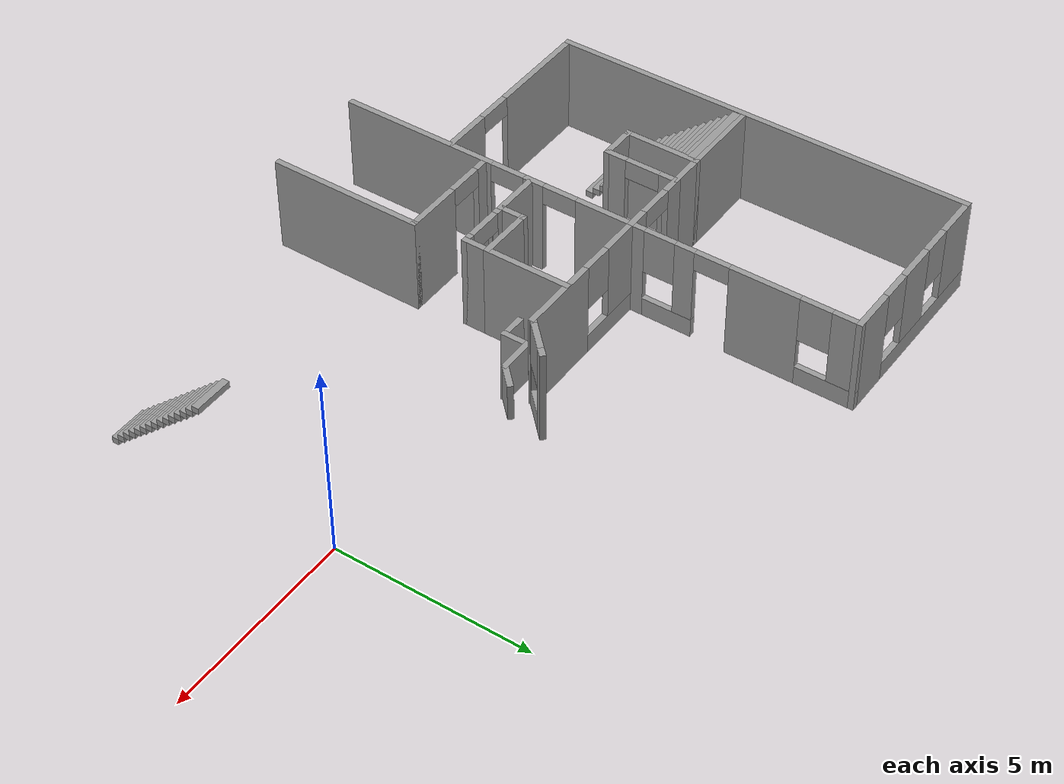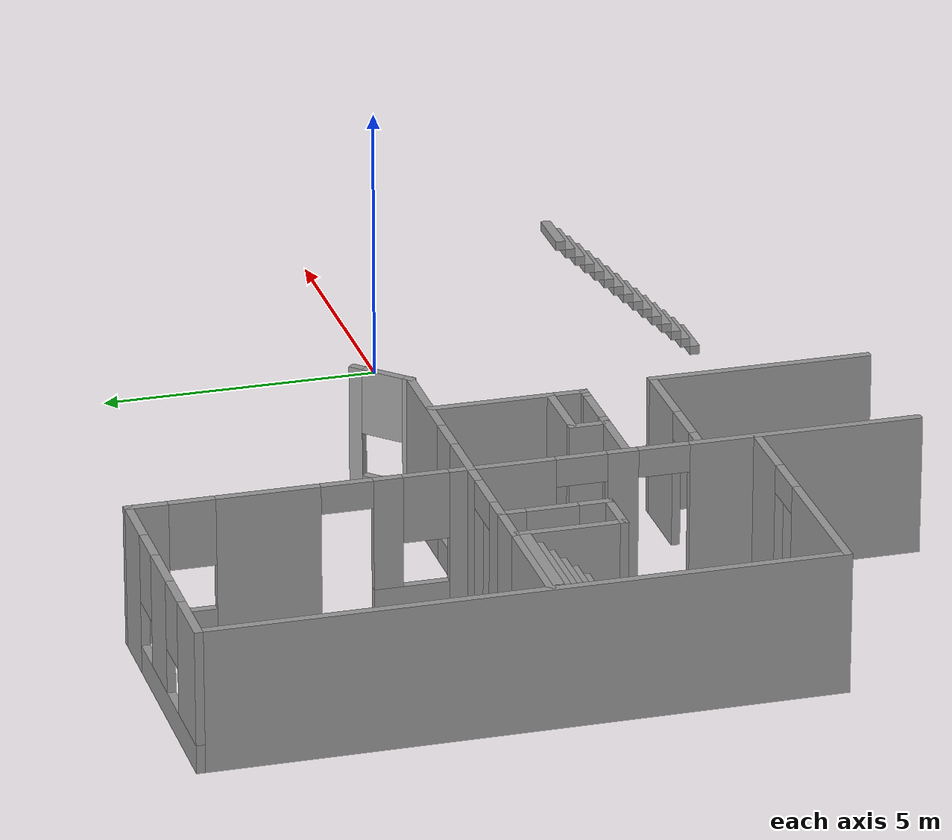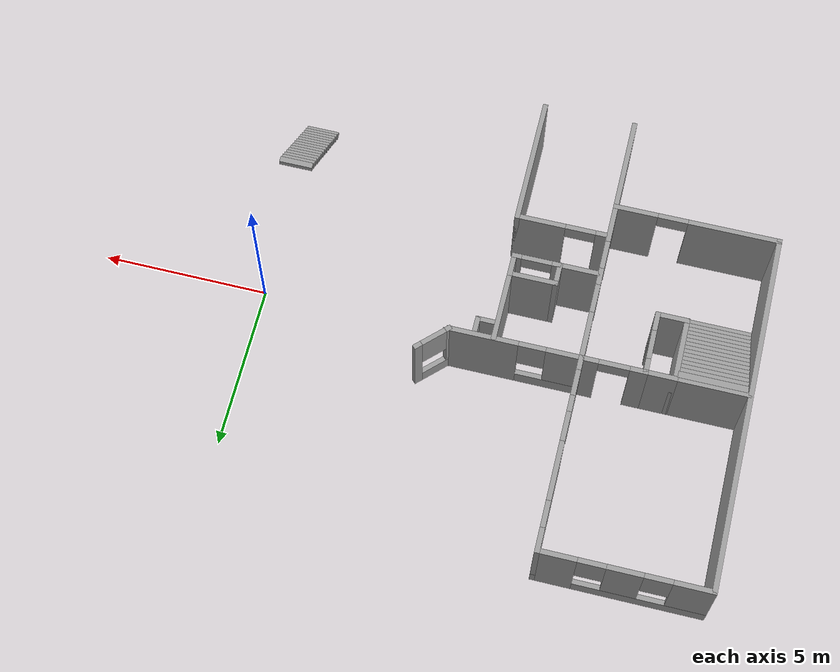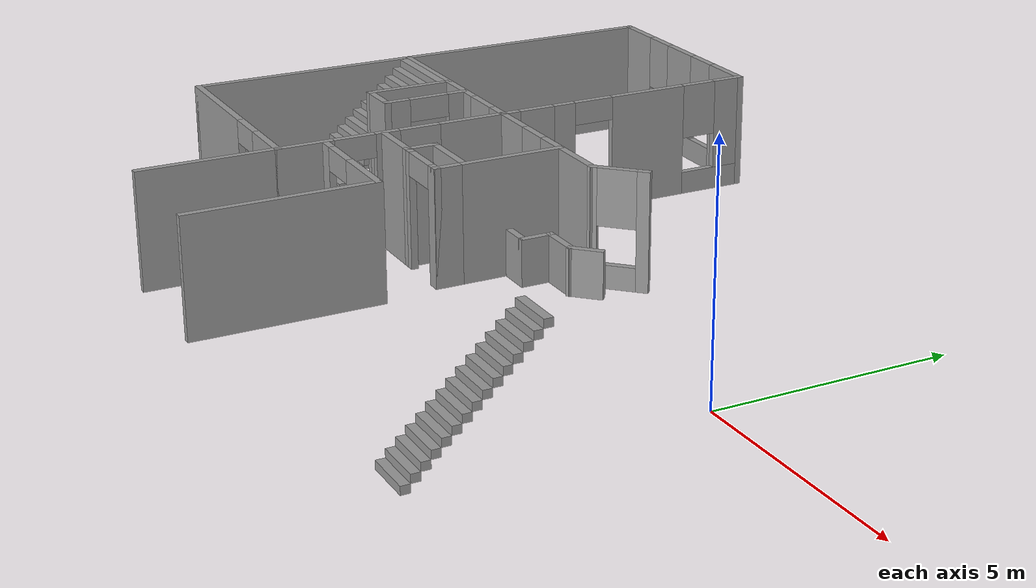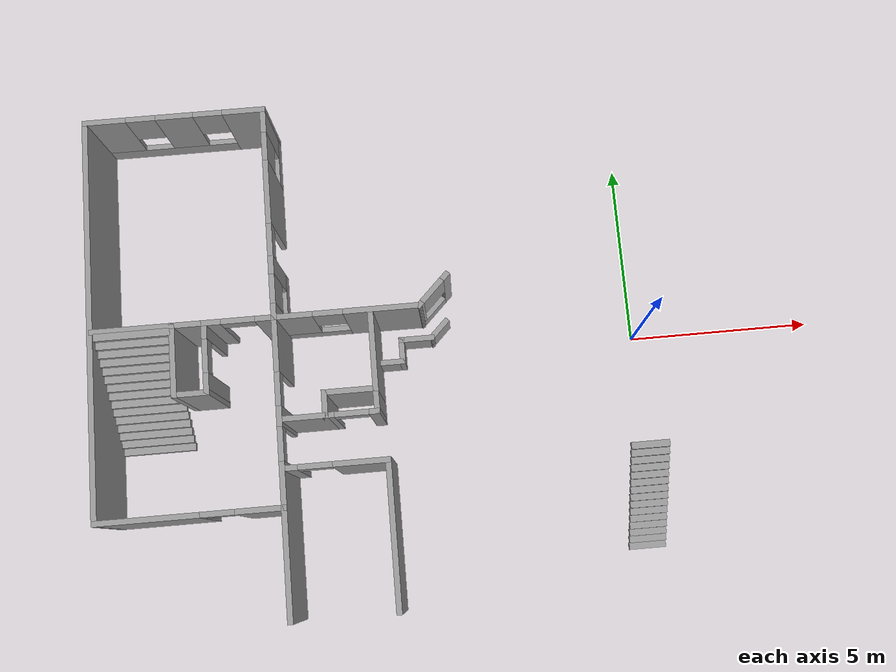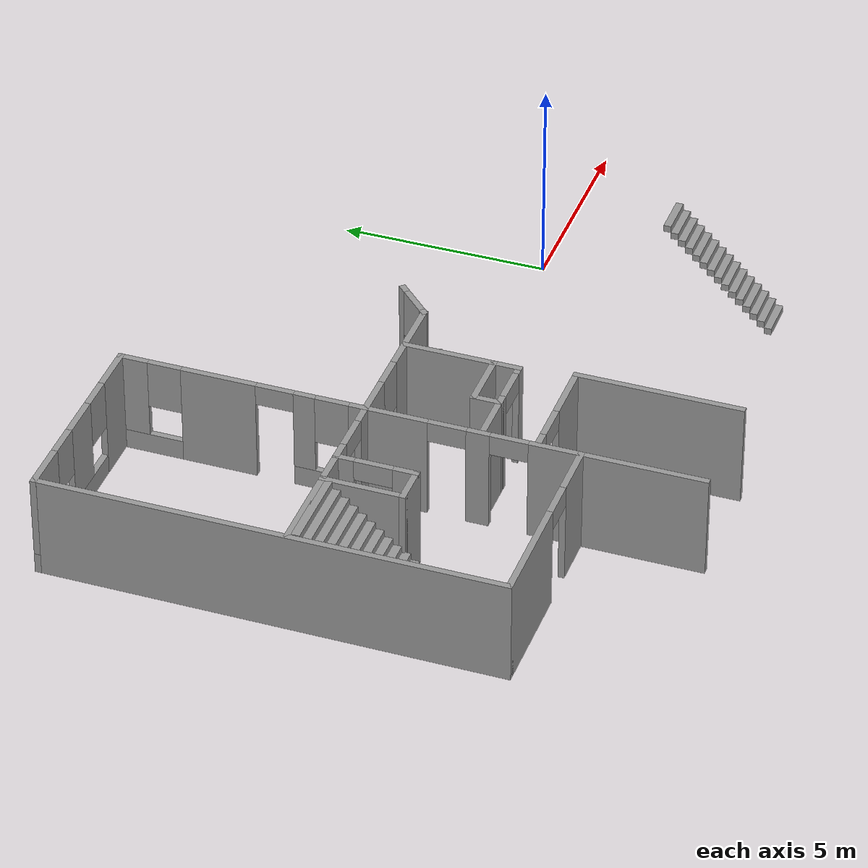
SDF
<sdf version="1.5">
 <model name="MeekinsHome">
  <pose>-5.07212 -0.075882 0 0 -0 0</pose>
  <link name="Stairs_0">
   <visual name="Stairs_0_Visual_0">
    <pose>-8.42864 -1.95219 0.083333 0 0 -3.14159</pose>
    <geometry><box><size>2.006 0.2 0.166667</size></box></geometry>
    <material>
     <script><uri>file://media/materials/scripts/gazebo.material</uri><name>Gazebo/Grey</name></script>
     <ambient>1 1 1 1</ambient>
    </material>
   </visual>
   <collision name="Stairs_0_Collision_0">
    <geometry><box><size>2.006 0.2 0.166667</size></box></geometry>
    <pose>-8.42864 -1.95219 0.083333 0 0 -3.14159</pose>
   </collision>
   <visual name="Stairs_0_Visual_1">
    <pose>-8.42864 -1.75219 0.25 0 0 -3.14159</pose>
    <geometry><box><size>2.006 0.2 0.166667</size></box></geometry>
    <material>
     <script><uri>file://media/materials/scripts/gazebo.material</uri><name>Gazebo/Grey</name></script>
     <ambient>1 1 1 1</ambient>
    </material>
   </visual>
   <collision name="Stairs_0_Collision_1">
    <geometry><box><size>2.006 0.2 0.166667</size></box></geometry>
    <pose>-8.42864 -1.75219 0.25 0 0 -3.14159</pose>
   </collision>
   <visual name="Stairs_0_Visual_2">
    <pose>-8.42864 -1.55219 0.416667 0 0 -3.14159</pose>
    <geometry><box><size>2.006 0.2 0.166667</size></box></geometry>
    <material>
     <script><uri>file://media/materials/scripts/gazebo.material</uri><name>Gazebo/Grey</name></script>
     <ambient>1 1 1 1</ambient>
    </material>
   </visual>
   <collision name="Stairs_0_Collision_2">
    <geometry><box><size>2.006 0.2 0.166667</size></box></geometry>
    <pose>-8.42864 -1.55219 0.416667 0 0 -3.14159</pose>
   </collision>
   <visual name="Stairs_0_Visual_3">
    <pose>-8.42864 -1.3522 0.583333 0 0 -3.14159</pose>
    <geometry><box><size>2.006 0.2 0.166667</size></box></geometry>
    <material>
     <script><uri>file://media/materials/scripts/gazebo.material</uri><name>Gazebo/Grey</name></script>
     <ambient>1 1 1 1</ambient>
    </material>
   </visual>
   <collision name="Stairs_0_Collision_3">
    <geometry><box><size>2.006 0.2 0.166667</size></box></geometry>
    <pose>-8.42864 -1.3522 0.583333 0 0 -3.14159</pose>
   </collision>
   <visual name="Stairs_0_Visual_4">
    <pose>-8.42864 -1.15219 0.75 0 0 -3.14159</pose>
    <geometry><box><size>2.006 0.2 0.166667</size></box></geometry>
    <material>
     <script><uri>file://media/materials/scripts/gazebo.material</uri><name>Gazebo/Grey</name></script>
     <ambient>1 1 1 1</ambient>
    </material>
   </visual>
   <collision name="Stairs_0_Collision_4">
    <geometry><box><size>2.006 0.2 0.166667</size></box></geometry>
    <pose>-8.42864 -1.15219 0.75 0 0 -3.14159</pose>
   </collision>
   <visual name="Stairs_0_Visual_5">
    <pose>-8.42864 -0.952195 0.916667 0 0 -3.14159</pose>
    <geometry><box><size>2.006 0.2 0.166667</size></box></geometry>
    <material>
     <script><uri>file://media/materials/scripts/gazebo.material</uri><name>Gazebo/Grey</name></script>
     <ambient>1 1 1 1</ambient>
    </material>
   </visual>
   <collision name="Stairs_0_Collision_5">
    <geometry><box><size>2.006 0.2 0.166667</size></box></geometry>
    <pose>-8.42864 -0.952195 0.916667 0 0 -3.14159</pose>
   </collision>
   <visual name="Stairs_0_Visual_6">
    <pose>-8.42864 -0.752195 1.08333 0 0 -3.14159</pose>
    <geometry><box><size>2.006 0.2 0.166667</size></box></geometry>
    <material>
     <script><uri>file://media/materials/scripts/gazebo.material</uri><name>Gazebo/Grey</name></script>
     <ambient>1 1 1 1</ambient>
    </material>
   </visual>
   <collision name="Stairs_0_Collision_6">
    <geometry><box><size>2.006 0.2 0.166667</size></box></geometry>
    <pose>-8.42864 -0.752195 1.08333 0 0 -3.14159</pose>
   </collision>
   <visual name="Stairs_0_Visual_7">
    <pose>-8.42864 -0.552195 1.25 0 0 -3.14159</pose>
    <geometry><box><size>2.006 0.2 0.166667</size></box></geometry>
    <material>
     <script><uri>file://media/materials/scripts/gazebo.material</uri><name>Gazebo/Grey</name></script>
     <ambient>1 1 1 1</ambient>
    </material>
   </visual>
   <collision name="Stairs_0_Collision_7">
    <geometry><box><size>2.006 0.2 0.166667</size></box></geometry>
    <pose>-8.42864 -0.552195 1.25 0 0 -3.14159</pose>
   </collision>
   <visual name="Stairs_0_Visual_8">
    <pose>-8.42864 -0.352195 1.41667 0 0 -3.14159</pose>
    <geometry><box><size>2.006 0.2 0.166667</size></box></geometry>
    <material>
     <script><uri>file://media/materials/scripts/gazebo.material</uri><name>Gazebo/Grey</name></script>
     <ambient>1 1 1 1</ambient>
    </material>
   </visual>
   <collision name="Stairs_0_Collision_8">
    <geometry><box><size>2.006 0.2 0.166667</size></box></geometry>
    <pose>-8.42864 -0.352195 1.41667 0 0 -3.14159</pose>
   </collision>
   <visual name="Stairs_0_Visual_9">
    <pose>-8.42864 -0.152194 1.58333 0 0 -3.14159</pose>
    <geometry><box><size>2.006 0.2 0.166667</size></box></geometry>
    <material>
     <script><uri>file://media/materials/scripts/gazebo.material</uri><name>Gazebo/Grey</name></script>
     <ambient>1 1 1 1</ambient>
    </material>
   </visual>
   <collision name="Stairs_0_Collision_9">
    <geometry><box><size>2.006 0.2 0.166667</size></box></geometry>
    <pose>-8.42864 -0.152194 1.58333 0 0 -3.14159</pose>
   </collision>
   <visual name="Stairs_0_Visual_10">
    <pose>-8.42864 0.047805 1.75 0 0 -3.14159</pose>
    <geometry><box><size>2.006 0.2 0.166667</size></box></geometry>
    <material>
     <script><uri>file://media/materials/scripts/gazebo.material</uri><name>Gazebo/Grey</name></script>
     <ambient>1 1 1 1</ambient>
    </material>
   </visual>
   <collision name="Stairs_0_Collision_10">
    <geometry><box><size>2.006 0.2 0.166667</size></box></geometry>
    <pose>-8.42864 0.047805 1.75 0 0 -3.14159</pose>
   </collision>
   <visual name="Stairs_0_Visual_11">
    <pose>-8.42864 0.247806 1.91667 0 0 -3.14159</pose>
    <geometry><box><size>2.006 0.2 0.166667</size></box></geometry>
    <material>
     <script><uri>file://media/materials/scripts/gazebo.material</uri><name>Gazebo/Grey</name></script>
     <ambient>1 1 1 1</ambient>
    </material>
   </visual>
   <collision name="Stairs_0_Collision_11">
    <geometry><box><size>2.006 0.2 0.166667</size></box></geometry>
    <pose>-8.42864 0.247806 1.91667 0 0 -3.14159</pose>
   </collision>
   <visual name="Stairs_0_Visual_12">
    <pose>-8.42864 0.447805 2.08333 0 0 -3.14159</pose>
    <geometry><box><size>2.006 0.2 0.166667</size></box></geometry>
    <material>
     <script><uri>file://media/materials/scripts/gazebo.material</uri><name>Gazebo/Grey</name></script>
     <ambient>1 1 1 1</ambient>
    </material>
   </visual>
   <collision name="Stairs_0_Collision_12">
    <geometry><box><size>2.006 0.2 0.166667</size></box></geometry>
    <pose>-8.42864 0.447805 2.08333 0 0 -3.14159</pose>
   </collision>
   <visual name="Stairs_0_Visual_13">
    <pose>-8.42864 0.647806 2.25 0 0 -3.14159</pose>
    <geometry><box><size>2.006 0.2 0.166667</size></box></geometry>
    <material>
     <script><uri>file://media/materials/scripts/gazebo.material</uri><name>Gazebo/Grey</name></script>
     <ambient>1 1 1 1</ambient>
    </material>
   </visual>
   <collision name="Stairs_0_Collision_13">
    <geometry><box><size>2.006 0.2 0.166667</size></box></geometry>
    <pose>-8.42864 0.647806 2.25 0 0 -3.14159</pose>
   </collision>
   <visual name="Stairs_0_Visual_14">
    <pose>-8.42864 0.847805 2.41667 0 0 -3.14159</pose>
    <geometry><box><size>2.006 0.2 0.166667</size></box></geometry>
    <material>
     <script><uri>file://media/materials/scripts/gazebo.material</uri><name>Gazebo/Grey</name></script>
     <ambient>1 1 1 1</ambient>
    </material>
   </visual>
   <collision name="Stairs_0_Collision_14">
    <geometry><box><size>2.006 0.2 0.166667</size></box></geometry>
    <pose>-8.42864 0.847805 2.41667 0 0 -3.14159</pose>
   </collision>
  </link>
  <link name="Stairs_2">
   <visual name="Stairs_2_Visual_0">
    <pose>4.83942 -5.73294 0.083333 0 0 -3.14159</pose>
    <geometry><box><size>1 0.181494 0.166667</size></box></geometry>
    <material>
     <script><uri>file://media/materials/scripts/gazebo.material</uri><name>Gazebo/Grey</name></script>
     <ambient>1 1 1 1</ambient>
    </material>
   </visual>
   <collision name="Stairs_2_Collision_0">
    <geometry><box><size>1 0.181494 0.166667</size></box></geometry>
    <pose>4.83942 -5.73294 0.083333 0 0 -3.14159</pose>
   </collision>
   <visual name="Stairs_2_Visual_1">
    <pose>4.83942 -5.55145 0.25 0 0 -3.14159</pose>
    <geometry><box><size>1 0.181494 0.166667</size></box></geometry>
    <material>
     <script><uri>file://media/materials/scripts/gazebo.material</uri><name>Gazebo/Grey</name></script>
     <ambient>1 1 1 1</ambient>
    </material>
   </visual>
   <collision name="Stairs_2_Collision_1">
    <geometry><box><size>1 0.181494 0.166667</size></box></geometry>
    <pose>4.83942 -5.55145 0.25 0 0 -3.14159</pose>
   </collision>
   <visual name="Stairs_2_Visual_2">
    <pose>4.83942 -5.36995 0.416667 0 0 -3.14159</pose>
    <geometry><box><size>1 0.181494 0.166667</size></box></geometry>
    <material>
     <script><uri>file://media/materials/scripts/gazebo.material</uri><name>Gazebo/Grey</name></script>
     <ambient>1 1 1 1</ambient>
    </material>
   </visual>
   <collision name="Stairs_2_Collision_2">
    <geometry><box><size>1 0.181494 0.166667</size></box></geometry>
    <pose>4.83942 -5.36995 0.416667 0 0 -3.14159</pose>
   </collision>
   <visual name="Stairs_2_Visual_3">
    <pose>4.83942 -5.18846 0.583333 0 0 -3.14159</pose>
    <geometry><box><size>1 0.181494 0.166667</size></box></geometry>
    <material>
     <script><uri>file://media/materials/scripts/gazebo.material</uri><name>Gazebo/Grey</name></script>
     <ambient>1 1 1 1</ambient>
    </material>
   </visual>
   <collision name="Stairs_2_Collision_3">
    <geometry><box><size>1 0.181494 0.166667</size></box></geometry>
    <pose>4.83942 -5.18846 0.583333 0 0 -3.14159</pose>
   </collision>
   <visual name="Stairs_2_Visual_4">
    <pose>4.83942 -5.00696 0.75 0 0 -3.14159</pose>
    <geometry><box><size>1 0.181494 0.166667</size></box></geometry>
    <material>
     <script><uri>file://media/materials/scripts/gazebo.material</uri><name>Gazebo/Grey</name></script>
     <ambient>1 1 1 1</ambient>
    </material>
   </visual>
   <collision name="Stairs_2_Collision_4">
    <geometry><box><size>1 0.181494 0.166667</size></box></geometry>
    <pose>4.83942 -5.00696 0.75 0 0 -3.14159</pose>
   </collision>
   <visual name="Stairs_2_Visual_5">
    <pose>4.83942 -4.82547 0.916667 0 0 -3.14159</pose>
    <geometry><box><size>1 0.181494 0.166667</size></box></geometry>
    <material>
     <script><uri>file://media/materials/scripts/gazebo.material</uri><name>Gazebo/Grey</name></script>
     <ambient>1 1 1 1</ambient>
    </material>
   </visual>
   <collision name="Stairs_2_Collision_5">
    <geometry><box><size>1 0.181494 0.166667</size></box></geometry>
    <pose>4.83942 -4.82547 0.916667 0 0 -3.14159</pose>
   </collision>
   <visual name="Stairs_2_Visual_6">
    <pose>4.83942 -4.64398 1.08333 0 0 -3.14159</pose>
    <geometry><box><size>1 0.181494 0.166667</size></box></geometry>
    <material>
     <script><uri>file://media/materials/scripts/gazebo.material</uri><name>Gazebo/Grey</name></script>
     <ambient>1 1 1 1</ambient>
    </material>
   </visual>
   <collision name="Stairs_2_Collision_6">
    <geometry><box><size>1 0.181494 0.166667</size></box></geometry>
    <pose>4.83942 -4.64398 1.08333 0 0 -3.14159</pose>
   </collision>
   <visual name="Stairs_2_Visual_7">
    <pose>4.83942 -4.46248 1.25 0 0 -3.14159</pose>
    <geometry><box><size>1 0.181494 0.166667</size></box></geometry>
    <material>
     <script><uri>file://media/materials/scripts/gazebo.material</uri><name>Gazebo/Grey</name></script>
     <ambient>1 1 1 1</ambient>
    </material>
   </visual>
   <collision name="Stairs_2_Collision_7">
    <geometry><box><size>1 0.181494 0.166667</size></box></geometry>
    <pose>4.83942 -4.46248 1.25 0 0 -3.14159</pose>
   </collision>
   <visual name="Stairs_2_Visual_8">
    <pose>4.83942 -4.28099 1.41667 0 0 -3.14159</pose>
    <geometry><box><size>1 0.181494 0.166667</size></box></geometry>
    <material>
     <script><uri>file://media/materials/scripts/gazebo.material</uri><name>Gazebo/Grey</name></script>
     <ambient>1 1 1 1</ambient>
    </material>
   </visual>
   <collision name="Stairs_2_Collision_8">
    <geometry><box><size>1 0.181494 0.166667</size></box></geometry>
    <pose>4.83942 -4.28099 1.41667 0 0 -3.14159</pose>
   </collision>
   <visual name="Stairs_2_Visual_9">
    <pose>4.83942 -4.09949 1.58333 0 0 -3.14159</pose>
    <geometry><box><size>1 0.181494 0.166667</size></box></geometry>
    <material>
     <script><uri>file://media/materials/scripts/gazebo.material</uri><name>Gazebo/Grey</name></script>
     <ambient>1 1 1 1</ambient>
    </material>
   </visual>
   <collision name="Stairs_2_Collision_9">
    <geometry><box><size>1 0.181494 0.166667</size></box></geometry>
    <pose>4.83942 -4.09949 1.58333 0 0 -3.14159</pose>
   </collision>
   <visual name="Stairs_2_Visual_10">
    <pose>4.83942 -3.918 1.75 0 0 -3.14159</pose>
    <geometry><box><size>1 0.181494 0.166667</size></box></geometry>
    <material>
     <script><uri>file://media/materials/scripts/gazebo.material</uri><name>Gazebo/Grey</name></script>
     <ambient>1 1 1 1</ambient>
    </material>
   </visual>
   <collision name="Stairs_2_Collision_10">
    <geometry><box><size>1 0.181494 0.166667</size></box></geometry>
    <pose>4.83942 -3.918 1.75 0 0 -3.14159</pose>
   </collision>
   <visual name="Stairs_2_Visual_11">
    <pose>4.83942 -3.7365 1.91667 0 0 -3.14159</pose>
    <geometry><box><size>1 0.181494 0.166667</size></box></geometry>
    <material>
     <script><uri>file://media/materials/scripts/gazebo.material</uri><name>Gazebo/Grey</name></script>
     <ambient>1 1 1 1</ambient>
    </material>
   </visual>
   <collision name="Stairs_2_Collision_11">
    <geometry><box><size>1 0.181494 0.166667</size></box></geometry>
    <pose>4.83942 -3.7365 1.91667 0 0 -3.14159</pose>
   </collision>
   <visual name="Stairs_2_Visual_12">
    <pose>4.83942 -3.55501 2.08333 0 0 -3.14159</pose>
    <geometry><box><size>1 0.181494 0.166667</size></box></geometry>
    <material>
     <script><uri>file://media/materials/scripts/gazebo.material</uri><name>Gazebo/Grey</name></script>
     <ambient>1 1 1 1</ambient>
    </material>
   </visual>
   <collision name="Stairs_2_Collision_12">
    <geometry><box><size>1 0.181494 0.166667</size></box></geometry>
    <pose>4.83942 -3.55501 2.08333 0 0 -3.14159</pose>
   </collision>
   <visual name="Stairs_2_Visual_13">
    <pose>4.83942 -3.37351 2.25 0 0 -3.14159</pose>
    <geometry><box><size>1 0.181494 0.166667</size></box></geometry>
    <material>
     <script><uri>file://media/materials/scripts/gazebo.material</uri><name>Gazebo/Grey</name></script>
     <ambient>1 1 1 1</ambient>
    </material>
   </visual>
   <collision name="Stairs_2_Collision_13">
    <geometry><box><size>1 0.181494 0.166667</size></box></geometry>
    <pose>4.83942 -3.37351 2.25 0 0 -3.14159</pose>
   </collision>
   <visual name="Stairs_2_Visual_14">
    <pose>4.83942 -3.19202 2.41667 0 0 -3.14159</pose>
    <geometry><box><size>1 0.181494 0.166667</size></box></geometry>
    <material>
     <script><uri>file://media/materials/scripts/gazebo.material</uri><name>Gazebo/Grey</name></script>
     <ambient>1 1 1 1</ambient>
    </material>
   </visual>
   <collision name="Stairs_2_Collision_14">
    <geometry><box><size>1 0.181494 0.166667</size></box></geometry>
    <pose>4.83942 -3.19202 2.41667 0 0 -3.14159</pose>
   </collision>
  </link>
  <link name="Wall_102">
   <pose>-7.10282 -4 0 0 -0 0</pose>
   <visual name="Wall_102_Visual_0">
    <pose>-1.1185 0 1.25 0 -0 0</pose>
    <geometry><box><size>2.76301 0.15 2.5</size></box></geometry>
    <material>
     <script><uri>file://media/materials/scripts/gazebo.material</uri><name>Gazebo/Grey</name></script>
     <ambient>1 1 1 1</ambient>
    </material>
   </visual>
   <collision name="Wall_102_Collision_0">
    <geometry><box><size>2.76301 0.15 2.5</size></box></geometry>
    <pose>-1.1185 0 1.25 0 -0 0</pose>
   </collision>
   <visual name="Wall_102_Visual_1">
    <pose>1.8315 0 1.25 0 -0 0</pose>
    <geometry><box><size>1.33699 0.15 2.5</size></box></geometry>
    <material>
     <script><uri>file://media/materials/scripts/gazebo.material</uri><name>Gazebo/Grey</name></script>
     <ambient>1 1 1 1</ambient>
    </material>
   </visual>
   <collision name="Wall_102_Collision_1">
    <geometry><box><size>1.33699 0.15 2.5</size></box></geometry>
    <pose>1.8315 0 1.25 0 -0 0</pose>
   </collision>
   <visual name="Wall_102_Visual_2">
    <pose>0.713005 0 2.25 0 -0 0</pose>
    <geometry><box><size>0.9 0.15 0.5</size></box></geometry>
    <material>
     <script><uri>file://media/materials/scripts/gazebo.material</uri><name>Gazebo/Grey</name></script>
     <ambient>1 1 1 1</ambient>
    </material>
   </visual>
   <collision name="Wall_102_Collision_2">
    <geometry><box><size>0.9 0.15 0.5</size></box></geometry>
    <pose>0.713005 0 2.25 0 -0 0</pose>
   </collision>
  </link>
  <link name="Wall_108">
   <collision name="Wall_108_Collision">
    <geometry><box><size>0.75 0.15 1</size></box></geometry>
    <pose>0 0 0.5 0 -0 0</pose>
   </collision>
   <visual name="Wall_108_Visual">
    <pose>0 0 0.5 0 -0 0</pose>
    <geometry><box><size>0.75 0.15 1</size></box></geometry>
    <material>
     <script><uri>file://media/materials/scripts/gazebo.material</uri><name>Gazebo/Grey</name></script>
     <ambient>1 1 1 1</ambient>
    </material>
   </visual>
   <pose>-1.74488 -0.186118 0 0 -0 0</pose>
  </link>
  <link name="Wall_111">
   <collision name="Wall_111_Collision">
    <geometry><box><size>0.75 0.15 1</size></box></geometry>
    <pose>0 0 0.5 0 -0 0</pose>
   </collision>
   <visual name="Wall_111_Visual">
    <pose>0 0 0.5 0 -0 0</pose>
    <geometry><box><size>0.75 0.15 1</size></box></geometry>
    <material>
     <script><uri>file://media/materials/scripts/gazebo.material</uri><name>Gazebo/Grey</name></script>
     <ambient>1 1 1 1</ambient>
    </material>
   </visual>
   <pose>-1.44488 0.113882 0 0 -0 1.5708</pose>
  </link>
  <link name="Wall_112">
   <collision name="Wall_112_Collision">
    <geometry><box><size>1 0.15 1</size></box></geometry>
    <pose>0 0 0.5 0 -0 0</pose>
   </collision>
   <visual name="Wall_112_Visual">
    <pose>0 0 0.5 0 -0 0</pose>
    <geometry><box><size>1 0.15 1</size></box></geometry>
    <material>
     <script><uri>file://media/materials/scripts/gazebo.material</uri><name>Gazebo/Grey</name></script>
     <ambient>1 1 1 1</ambient>
    </material>
   </visual>
   <pose>-1.01988 0.413882 0 0 -0 0</pose>
  </link>
  <link name="Wall_113">
   <collision name="Wall_113_Collision">
    <geometry><box><size>0.751041 0.15 1</size></box></geometry>
    <pose>0 0 0.5 0 -0 0</pose>
   </collision>
   <visual name="Wall_113_Visual">
    <pose>0 0 0.5 0 -0 0</pose>
    <geometry><box><size>0.751041 0.15 1</size></box></geometry>
    <material>
     <script><uri>file://media/materials/scripts/gazebo.material</uri><name>Gazebo/Grey</name></script>
     <ambient>1 1 1 1</ambient>
    </material>
   </visual>
   <pose>-0.382379 0.626382 0 0 -0 0.785398</pose>
  </link>
  <link name="Wall_30">
   <pose>-0.438908 1.38891 0 0 0 -2.35619</pose>
   <visual name="Wall_30_Visual_0">
    <pose>-0.495867 0 1.25 0 -0 0</pose>
    <geometry><box><size>0.258266 0.15 2.5</size></box></geometry>
    <material>
     <script><uri>file://media/materials/scripts/gazebo.material</uri><name>Gazebo/Grey</name></script>
     <ambient>1 1 1 1</ambient>
    </material>
   </visual>
   <collision name="Wall_30_Collision_0">
    <geometry><box><size>0.258266 0.15 2.5</size></box></geometry>
    <pose>-0.495867 0 1.25 0 -0 0</pose>
   </collision>
   <visual name="Wall_30_Visual_1">
    <pose>0.129133 0 0.25 0 -0 0</pose>
    <geometry><box><size>0.991734 0.15 0.5</size></box></geometry>
    <material>
     <script><uri>file://media/materials/scripts/gazebo.material</uri><name>Gazebo/Grey</name></script>
     <ambient>1 1 1 1</ambient>
    </material>
   </visual>
   <collision name="Wall_30_Collision_1">
    <geometry><box><size>0.991734 0.15 0.5</size></box></geometry>
    <pose>0.129133 0 0.25 0 -0 0</pose>
   </collision>
   <visual name="Wall_30_Visual_2">
    <pose>0.529133 0 1.5 0 -0 0</pose>
    <geometry><box><size>0.191734 0.15 2</size></box></geometry>
    <material>
     <script><uri>file://media/materials/scripts/gazebo.material</uri><name>Gazebo/Grey</name></script>
     <ambient>1 1 1 1</ambient>
    </material>
   </visual>
   <collision name="Wall_30_Collision_2">
    <geometry><box><size>0.191734 0.15 2</size></box></geometry>
    <pose>0.529133 0 1.5 0 -0 0</pose>
   </collision>
   <visual name="Wall_30_Visual_3">
    <pose>0.033266 0 1.9 0 -0 0</pose>
    <geometry><box><size>0.8 0.15 1.2</size></box></geometry>
    <material>
     <script><uri>file://media/materials/scripts/gazebo.material</uri><name>Gazebo/Grey</name></script>
     <ambient>1 1 1 1</ambient>
    </material>
   </visual>
   <collision name="Wall_30_Collision_3">
    <geometry><box><size>0.8 0.15 1.2</size></box></geometry>
    <pose>0.033266 0 1.9 0 -0 0</pose>
   </collision>
  </link>
  <link name="Wall_31">
   <pose>-2.75282 1 0 0 -0 3.14159</pose>
   <visual name="Wall_31_Visual_0">
    <pose>-0.948106 0 1.25 0 -0 0</pose>
    <geometry><box><size>2.10379 0.15 2.5</size></box></geometry>
    <material>
     <script><uri>file://media/materials/scripts/gazebo.material</uri><name>Gazebo/Grey</name></script>
     <ambient>1 1 1 1</ambient>
    </material>
   </visual>
   <collision name="Wall_31_Collision_0">
    <geometry><box><size>2.10379 0.15 2.5</size></box></geometry>
    <pose>-0.948106 0 1.25 0 -0 0</pose>
   </collision>
   <visual name="Wall_31_Visual_1">
    <pose>1.05189 0 0.25 0 -0 0</pose>
    <geometry><box><size>1.89621 0.15 0.5</size></box></geometry>
    <material>
     <script><uri>file://media/materials/scripts/gazebo.material</uri><name>Gazebo/Grey</name></script>
     <ambient>1 1 1 1</ambient>
    </material>
   </visual>
   <collision name="Wall_31_Collision_1">
    <geometry><box><size>1.89621 0.15 0.5</size></box></geometry>
    <pose>1.05189 0 0.25 0 -0 0</pose>
   </collision>
   <visual name="Wall_31_Visual_2">
    <pose>1.45189 0 1.5 0 -0 0</pose>
    <geometry><box><size>1.09621 0.15 2</size></box></geometry>
    <material>
     <script><uri>file://media/materials/scripts/gazebo.material</uri><name>Gazebo/Grey</name></script>
     <ambient>1 1 1 1</ambient>
    </material>
   </visual>
   <collision name="Wall_31_Collision_2">
    <geometry><box><size>1.09621 0.15 2</size></box></geometry>
    <pose>1.45189 0 1.5 0 -0 0</pose>
   </collision>
   <visual name="Wall_31_Visual_3">
    <pose>0.503787 0 1.9 0 -0 0</pose>
    <geometry><box><size>0.8 0.15 1.2</size></box></geometry>
    <material>
     <script><uri>file://media/materials/scripts/gazebo.material</uri><name>Gazebo/Grey</name></script>
     <ambient>1 1 1 1</ambient>
    </material>
   </visual>
   <collision name="Wall_31_Collision_3">
    <geometry><box><size>0.8 0.15 1.2</size></box></geometry>
    <pose>0.503787 0 1.9 0 -0 0</pose>
   </collision>
  </link>
  <link name="Wall_32">
   <pose>-4.67782 3.925 0 0 -0 1.5708</pose>
   <visual name="Wall_32_Visual_0">
    <pose>-2.77197 0 1.25 0 -0 0</pose>
    <geometry><box><size>0.456065 0.15 2.5</size></box></geometry>
    <material>
     <script><uri>file://media/materials/scripts/gazebo.material</uri><name>Gazebo/Grey</name></script>
     <ambient>1 1 1 1</ambient>
    </material>
   </visual>
   <collision name="Wall_32_Collision_0">
    <geometry><box><size>0.456065 0.15 2.5</size></box></geometry>
    <pose>-2.77197 0 1.25 0 -0 0</pose>
   </collision>
   <visual name="Wall_32_Visual_1">
    <pose>0.561742 0 1.25 0 -0 0</pose>
    <geometry><box><size>1.79319 0.15 2.5</size></box></geometry>
    <material>
     <script><uri>file://media/materials/scripts/gazebo.material</uri><name>Gazebo/Grey</name></script>
     <ambient>1 1 1 1</ambient>
    </material>
   </visual>
   <collision name="Wall_32_Collision_1">
    <geometry><box><size>1.79319 0.15 2.5</size></box></geometry>
    <pose>0.561742 0 1.25 0 -0 0</pose>
   </collision>
   <visual name="Wall_32_Visual_2">
    <pose>-1.88939 0 0.25 0 -0 0</pose>
    <geometry><box><size>1.30908 0.15 0.5</size></box></geometry>
    <material>
     <script><uri>file://media/materials/scripts/gazebo.material</uri><name>Gazebo/Grey</name></script>
     <ambient>1 1 1 1</ambient>
    </material>
   </visual>
   <collision name="Wall_32_Collision_2">
    <geometry><box><size>1.30908 0.15 0.5</size></box></geometry>
    <pose>-1.88939 0 0.25 0 -0 0</pose>
   </collision>
   <visual name="Wall_32_Visual_3">
    <pose>2.22917 0 0.25 0 -0 0</pose>
    <geometry><box><size>1.54166 0.15 0.5</size></box></geometry>
    <material>
     <script><uri>file://media/materials/scripts/gazebo.material</uri><name>Gazebo/Grey</name></script>
     <ambient>1 1 1 1</ambient>
    </material>
   </visual>
   <collision name="Wall_32_Collision_3">
    <geometry><box><size>1.54166 0.15 0.5</size></box></geometry>
    <pose>2.22917 0 0.25 0 -0 0</pose>
   </collision>
   <visual name="Wall_32_Visual_4">
    <pose>-1.4894 0 1.5 0 -0 0</pose>
    <geometry><box><size>0.509081 0.15 2</size></box></geometry>
    <material>
     <script><uri>file://media/materials/scripts/gazebo.material</uri><name>Gazebo/Grey</name></script>
     <ambient>1 1 1 1</ambient>
    </material>
   </visual>
   <collision name="Wall_32_Collision_4">
    <geometry><box><size>0.509081 0.15 2</size></box></geometry>
    <pose>-1.4894 0 1.5 0 -0 0</pose>
   </collision>
   <visual name="Wall_32_Visual_5">
    <pose>-1.4894 0 1.5 0 -0 0</pose>
    <geometry><box><size>0.509081 0.15 2</size></box></geometry>
    <material>
     <script><uri>file://media/materials/scripts/gazebo.material</uri><name>Gazebo/Grey</name></script>
     <ambient>1 1 1 1</ambient>
    </material>
   </visual>
   <collision name="Wall_32_Collision_5">
    <geometry><box><size>0.509081 0.15 2</size></box></geometry>
    <pose>-1.4894 0 1.5 0 -0 0</pose>
   </collision>
   <visual name="Wall_32_Visual_6">
    <pose>2.62917 0 1.5 0 -0 0</pose>
    <geometry><box><size>0.741662 0.15 2</size></box></geometry>
    <material>
     <script><uri>file://media/materials/scripts/gazebo.material</uri><name>Gazebo/Grey</name></script>
     <ambient>1 1 1 1</ambient>
    </material>
   </visual>
   <collision name="Wall_32_Collision_6">
    <geometry><box><size>0.741662 0.15 2</size></box></geometry>
    <pose>2.62917 0 1.5 0 -0 0</pose>
   </collision>
   <visual name="Wall_32_Visual_7">
    <pose>-2.14393 0 1.9 0 -0 0</pose>
    <geometry><box><size>0.8 0.15 1.2</size></box></geometry>
    <material>
     <script><uri>file://media/materials/scripts/gazebo.material</uri><name>Gazebo/Grey</name></script>
     <ambient>1 1 1 1</ambient>
    </material>
   </visual>
   <collision name="Wall_32_Collision_7">
    <geometry><box><size>0.8 0.15 1.2</size></box></geometry>
    <pose>-2.14393 0 1.9 0 -0 0</pose>
   </collision>
   <visual name="Wall_32_Visual_8">
    <pose>1.85834 0 1.9 0 -0 0</pose>
    <geometry><box><size>0.8 0.15 1.2</size></box></geometry>
    <material>
     <script><uri>file://media/materials/scripts/gazebo.material</uri><name>Gazebo/Grey</name></script>
     <ambient>1 1 1 1</ambient>
    </material>
   </visual>
   <collision name="Wall_32_Collision_8">
    <geometry><box><size>0.8 0.15 1.2</size></box></geometry>
    <pose>1.85834 0 1.9 0 -0 0</pose>
   </collision>
   <visual name="Wall_32_Visual_9">
    <pose>-0.784854 0 2.25 0 -0 0</pose>
    <geometry><box><size>0.9 0.15 0.5</size></box></geometry>
    <material>
     <script><uri>file://media/materials/scripts/gazebo.material</uri><name>Gazebo/Grey</name></script>
     <ambient>1 1 1 1</ambient>
    </material>
   </visual>
   <collision name="Wall_32_Collision_9">
    <geometry><box><size>0.9 0.15 0.5</size></box></geometry>
    <pose>-0.784854 0 2.25 0 -0 0</pose>
   </collision>
   <visual name="Wall_32_Visual_10">
    <pose>-0.784854 0 2.25 0 -0 0</pose>
    <geometry><box><size>0.9 0.15 0.5</size></box></geometry>
    <material>
     <script><uri>file://media/materials/scripts/gazebo.material</uri><name>Gazebo/Grey</name></script>
     <ambient>1 1 1 1</ambient>
    </material>
   </visual>
   <collision name="Wall_32_Collision_10">
    <geometry><box><size>0.9 0.15 0.5</size></box></geometry>
    <pose>-0.784854 0 2.25 0 -0 0</pose>
   </collision>
  </link>
  <link name="Wall_33">
   <pose>-7.10282 6.85 0 0 -0 3.14159</pose>
   <visual name="Wall_33_Visual_0">
    <pose>-1.90942 0 1.25 0 -0 0</pose>
    <geometry><box><size>1.18116 0.15 2.5</size></box></geometry>
    <material>
     <script><uri>file://media/materials/scripts/gazebo.material</uri><name>Gazebo/Grey</name></script>
     <ambient>1 1 1 1</ambient>
    </material>
   </visual>
   <collision name="Wall_33_Collision_0">
    <geometry><box><size>1.18116 0.15 2.5</size></box></geometry>
    <pose>-1.90942 0 1.25 0 -0 0</pose>
   </collision>
   <visual name="Wall_33_Visual_1">
    <pose>0.590582 0 0.25 0 -0 0</pose>
    <geometry><box><size>3.81884 0.15 0.5</size></box></geometry>
    <material>
     <script><uri>file://media/materials/scripts/gazebo.material</uri><name>Gazebo/Grey</name></script>
     <ambient>1 1 1 1</ambient>
    </material>
   </visual>
   <collision name="Wall_33_Collision_1">
    <geometry><box><size>3.81884 0.15 0.5</size></box></geometry>
    <pose>0.590582 0 0.25 0 -0 0</pose>
   </collision>
   <visual name="Wall_33_Visual_2">
    <pose>-0.004032 0 1.5 0 -0 0</pose>
    <geometry><box><size>1.02961 0.15 2</size></box></geometry>
    <material>
     <script><uri>file://media/materials/scripts/gazebo.material</uri><name>Gazebo/Grey</name></script>
     <ambient>1 1 1 1</ambient>
    </material>
   </visual>
   <collision name="Wall_33_Collision_2">
    <geometry><box><size>1.02961 0.15 2</size></box></geometry>
    <pose>-0.004032 0 1.5 0 -0 0</pose>
   </collision>
   <visual name="Wall_33_Visual_3">
    <pose>1.90539 0 1.5 0 -0 0</pose>
    <geometry><box><size>1.18923 0.15 2</size></box></geometry>
    <material>
     <script><uri>file://media/materials/scripts/gazebo.material</uri><name>Gazebo/Grey</name></script>
     <ambient>1 1 1 1</ambient>
    </material>
   </visual>
   <collision name="Wall_33_Collision_3">
    <geometry><box><size>1.18923 0.15 2</size></box></geometry>
    <pose>1.90539 0 1.5 0 -0 0</pose>
   </collision>
   <visual name="Wall_33_Visual_4">
    <pose>-0.918837 0 1.9 0 -0 0</pose>
    <geometry><box><size>0.8 0.15 1.2</size></box></geometry>
    <material>
     <script><uri>file://media/materials/scripts/gazebo.material</uri><name>Gazebo/Grey</name></script>
     <ambient>1 1 1 1</ambient>
    </material>
   </visual>
   <collision name="Wall_33_Collision_4">
    <geometry><box><size>0.8 0.15 1.2</size></box></geometry>
    <pose>-0.918837 0 1.9 0 -0 0</pose>
   </collision>
   <visual name="Wall_33_Visual_5">
    <pose>0.910773 0 1.9 0 -0 0</pose>
    <geometry><box><size>0.8 0.15 1.2</size></box></geometry>
    <material>
     <script><uri>file://media/materials/scripts/gazebo.material</uri><name>Gazebo/Grey</name></script>
     <ambient>1 1 1 1</ambient>
    </material>
   </visual>
   <collision name="Wall_33_Collision_5">
    <geometry><box><size>0.8 0.15 1.2</size></box></geometry>
    <pose>0.910773 0 1.9 0 -0 0</pose>
   </collision>
  </link>
  <link name="Wall_34">
   <collision name="Wall_34_Collision">
    <geometry><box><size>11 0.15 2.5</size></box></geometry>
    <pose>0 0 1.25 0 -0 0</pose>
   </collision>
   <visual name="Wall_34_Visual">
    <pose>0 0 1.25 0 -0 0</pose>
    <geometry><box><size>11 0.15 2.5</size></box></geometry>
    <material>
     <script><uri>file://media/materials/scripts/gazebo.material</uri><name>Gazebo/Grey</name></script>
     <ambient>1 1 1 1</ambient>
    </material>
   </visual>
   <pose>-9.52782 1.425 0 0 0 -1.5708</pose>
  </link>
  <link name="Wall_37">
   <pose>-5.60282 1 0 0 -0 3.14159</pose>
   <visual name="Wall_37_Visual_0">
    <pose>-0.709984 0 1.25 0 -0 0</pose>
    <geometry><box><size>0.580032 0.15 2.5</size></box></geometry>
    <material>
     <script><uri>file://media/materials/scripts/gazebo.material</uri><name>Gazebo/Grey</name></script>
     <ambient>1 1 1 1</ambient>
    </material>
   </visual>
   <collision name="Wall_37_Collision_0">
    <geometry><box><size>0.580032 0.15 2.5</size></box></geometry>
    <pose>-0.709984 0 1.25 0 -0 0</pose>
   </collision>
   <visual name="Wall_37_Visual_1">
    <pose>0.740016 0 1.25 0 -0 0</pose>
    <geometry><box><size>0.519968 0.15 2.5</size></box></geometry>
    <material>
     <script><uri>file://media/materials/scripts/gazebo.material</uri><name>Gazebo/Grey</name></script>
     <ambient>1 1 1 1</ambient>
    </material>
   </visual>
   <collision name="Wall_37_Collision_1">
    <geometry><box><size>0.519968 0.15 2.5</size></box></geometry>
    <pose>0.740016 0 1.25 0 -0 0</pose>
   </collision>
   <visual name="Wall_37_Visual_2">
    <pose>0.030032 0 2.25 0 -0 0</pose>
    <geometry><box><size>0.9 0.15 0.5</size></box></geometry>
    <material>
     <script><uri>file://media/materials/scripts/gazebo.material</uri><name>Gazebo/Grey</name></script>
     <ambient>1 1 1 1</ambient>
    </material>
   </visual>
   <collision name="Wall_37_Collision_2">
    <geometry><box><size>0.9 0.15 0.5</size></box></geometry>
    <pose>0.030032 0 2.25 0 -0 0</pose>
   </collision>
  </link>
  <link name="Wall_38">
   <pose>-6.52782 0.075 0 0 0 -1.5708</pose>
   <visual name="Wall_38_Visual_0">
    <pose>-0.749055 0 1.25 0 -0 0</pose>
    <geometry><box><size>0.50189 0.15 2.5</size></box></geometry>
    <material>
     <script><uri>file://media/materials/scripts/gazebo.material</uri><name>Gazebo/Grey</name></script>
     <ambient>1 1 1 1</ambient>
    </material>
   </visual>
   <collision name="Wall_38_Collision_0">
    <geometry><box><size>0.50189 0.15 2.5</size></box></geometry>
    <pose>-0.749055 0 1.25 0 -0 0</pose>
   </collision>
   <visual name="Wall_38_Visual_1">
    <pose>0.700945 0 1.25 0 -0 0</pose>
    <geometry><box><size>0.59811 0.15 2.5</size></box></geometry>
    <material>
     <script><uri>file://media/materials/scripts/gazebo.material</uri><name>Gazebo/Grey</name></script>
     <ambient>1 1 1 1</ambient>
    </material>
   </visual>
   <collision name="Wall_38_Collision_1">
    <geometry><box><size>0.59811 0.15 2.5</size></box></geometry>
    <pose>0.700945 0 1.25 0 -0 0</pose>
   </collision>
   <visual name="Wall_38_Visual_2">
    <pose>-0.04811 0 2.25 0 -0 0</pose>
    <geometry><box><size>0.9 0.15 0.5</size></box></geometry>
    <material>
     <script><uri>file://media/materials/scripts/gazebo.material</uri><name>Gazebo/Grey</name></script>
     <ambient>1 1 1 1</ambient>
    </material>
   </visual>
   <collision name="Wall_38_Collision_2">
    <geometry><box><size>0.9 0.15 0.5</size></box></geometry>
    <pose>-0.04811 0 2.25 0 -0 0</pose>
   </collision>
  </link>
  <link name="Wall_39">
   <collision name="Wall_39_Collision">
    <geometry><box><size>1 0.15 2.5</size></box></geometry>
    <pose>0 0 1.25 0 -0 0</pose>
   </collision>
   <visual name="Wall_39_Visual">
    <pose>0 0 1.25 0 -0 0</pose>
    <geometry><box><size>1 0.15 2.5</size></box></geometry>
    <material>
     <script><uri>file://media/materials/scripts/gazebo.material</uri><name>Gazebo/Grey</name></script>
     <ambient>1 1 1 1</ambient>
    </material>
   </visual>
   <pose>-6.95282 -0.85 0 0 -0 3.14159</pose>
  </link>
  <link name="Wall_40">
   <collision name="Wall_40_Collision">
    <geometry><box><size>2 0.15 2.5</size></box></geometry>
    <pose>0 0 1.25 0 -0 0</pose>
   </collision>
   <visual name="Wall_40_Visual">
    <pose>0 0 1.25 0 -0 0</pose>
    <geometry><box><size>2 0.15 2.5</size></box></geometry>
    <material>
     <script><uri>file://media/materials/scripts/gazebo.material</uri><name>Gazebo/Grey</name></script>
     <ambient>1 1 1 1</ambient>
    </material>
   </visual>
   <pose>-7.37782 0.075 0 0 -0 1.5708</pose>
  </link>
  <link name="Wall_41">
   <collision name="Wall_41_Collision">
    <geometry><box><size>1 0.15 2.5</size></box></geometry>
    <pose>0 0 1.25 0 -0 0</pose>
   </collision>
   <visual name="Wall_41_Visual">
    <pose>0 0 1.25 0 -0 0</pose>
    <geometry><box><size>1 0.15 2.5</size></box></geometry>
    <material>
     <script><uri>file://media/materials/scripts/gazebo.material</uri><name>Gazebo/Grey</name></script>
     <ambient>1 1 1 1</ambient>
    </material>
   </visual>
   <pose>-6.95282 1 0 0 -0 0</pose>
  </link>
  <link name="Wall_43">
   <collision name="Wall_43_Collision">
    <geometry><box><size>2.25 0.15 2.5</size></box></geometry>
    <pose>0 0 1.25 0 -0 0</pose>
   </collision>
   <visual name="Wall_43_Visual">
    <pose>0 0 1.25 0 -0 0</pose>
    <geometry><box><size>2.25 0.15 2.5</size></box></geometry>
    <material>
     <script><uri>file://media/materials/scripts/gazebo.material</uri><name>Gazebo/Grey</name></script>
     <ambient>1 1 1 1</ambient>
    </material>
   </visual>
   <pose>-8.42782 1 0 0 -0 3.14159</pose>
  </link>
  <link name="Wall_52">
   <pose>-4.67782 -2.925 0 0 0 -1.5708</pose>
   <visual name="Wall_52_Visual_0">
    <pose>-3.2287 0 1.25 0 -0 0</pose>
    <geometry><box><size>1.54261 0.15 2.5</size></box></geometry>
    <material>
     <script><uri>file://media/materials/scripts/gazebo.material</uri><name>Gazebo/Grey</name></script>
     <ambient>1 1 1 1</ambient>
    </material>
   </visual>
   <collision name="Wall_52_Collision_0">
    <geometry><box><size>1.54261 0.15 2.5</size></box></geometry>
    <pose>-3.2287 0 1.25 0 -0 0</pose>
   </collision>
   <visual name="Wall_52_Visual_1">
    <pose>-1.28698 0 1.25 0 -0 0</pose>
    <geometry><box><size>0.540818 0.15 2.5</size></box></geometry>
    <material>
     <script><uri>file://media/materials/scripts/gazebo.material</uri><name>Gazebo/Grey</name></script>
     <ambient>1 1 1 1</ambient>
    </material>
   </visual>
   <collision name="Wall_52_Collision_1">
    <geometry><box><size>0.540818 0.15 2.5</size></box></geometry>
    <pose>-1.28698 0 1.25 0 -0 0</pose>
   </collision>
   <visual name="Wall_52_Visual_2">
    <pose>1.94171 0 1.25 0 -0 0</pose>
    <geometry><box><size>4.11657 0.15 2.5</size></box></geometry>
    <material>
     <script><uri>file://media/materials/scripts/gazebo.material</uri><name>Gazebo/Grey</name></script>
     <ambient>1 1 1 1</ambient>
    </material>
   </visual>
   <collision name="Wall_52_Collision_2">
    <geometry><box><size>4.11657 0.15 2.5</size></box></geometry>
    <pose>1.94171 0 1.25 0 -0 0</pose>
   </collision>
   <visual name="Wall_52_Visual_3">
    <pose>-2.00739 0 2.25 0 -0 0</pose>
    <geometry><box><size>0.9 0.15 0.5</size></box></geometry>
    <material>
     <script><uri>file://media/materials/scripts/gazebo.material</uri><name>Gazebo/Grey</name></script>
     <ambient>1 1 1 1</ambient>
    </material>
   </visual>
   <collision name="Wall_52_Collision_3">
    <geometry><box><size>0.9 0.15 0.5</size></box></geometry>
    <pose>-2.00739 0 2.25 0 -0 0</pose>
   </collision>
   <visual name="Wall_52_Visual_4">
    <pose>-0.566571 0 2.25 0 -0 0</pose>
    <geometry><box><size>0.9 0.15 0.5</size></box></geometry>
    <material>
     <script><uri>file://media/materials/scripts/gazebo.material</uri><name>Gazebo/Grey</name></script>
     <ambient>1 1 1 1</ambient>
    </material>
   </visual>
   <collision name="Wall_52_Collision_4">
    <geometry><box><size>0.9 0.15 0.5</size></box></geometry>
    <pose>-0.566571 0 2.25 0 -0 0</pose>
   </collision>
  </link>
  <link name="Wall_63">
   <collision name="Wall_63_Collision">
    <geometry><box><size>1.25 0.15 2.5</size></box></geometry>
    <pose>0 0 1.25 0 -0 0</pose>
   </collision>
   <visual name="Wall_63_Visual">
    <pose>0 0 1.25 0 -0 0</pose>
    <geometry><box><size>1.25 0.15 2.5</size></box></geometry>
    <material>
     <script><uri>file://media/materials/scripts/gazebo.material</uri><name>Gazebo/Grey</name></script>
     <ambient>1 1 1 1</ambient>
    </material>
   </visual>
   <pose>-4.03307 -1.71806 0 0 -0 0</pose>
  </link>
  <link name="Wall_64">
   <collision name="Wall_64_Collision">
    <geometry><box><size>0.75 0.15 2.5</size></box></geometry>
    <pose>0 0 1.25 0 -0 0</pose>
   </collision>
   <visual name="Wall_64_Visual">
    <pose>0 0 1.25 0 -0 0</pose>
    <geometry><box><size>0.75 0.15 2.5</size></box></geometry>
    <material>
     <script><uri>file://media/materials/scripts/gazebo.material</uri><name>Gazebo/Grey</name></script>
     <ambient>1 1 1 1</ambient>
    </material>
   </visual>
   <pose>-3.48307 -1.41806 0 0 -0 1.5708</pose>
  </link>
  <link name="Wall_65">
   <collision name="Wall_65_Collision">
    <geometry><box><size>1.5 0.15 2.5</size></box></geometry>
    <pose>0 0 1.25 0 -0 0</pose>
   </collision>
   <visual name="Wall_65_Visual">
    <pose>0 0 1.25 0 -0 0</pose>
    <geometry><box><size>1.5 0.15 2.5</size></box></geometry>
    <material>
     <script><uri>file://media/materials/scripts/gazebo.material</uri><name>Gazebo/Grey</name></script>
     <ambient>1 1 1 1</ambient>
    </material>
   </visual>
   <pose>-2.80807 -1.11807 0 0 -0 0</pose>
  </link>
  <link name="Wall_66">
   <collision name="Wall_66_Collision">
    <geometry><box><size>0.75 0.15 2.5</size></box></geometry>
    <pose>0 0 1.25 0 -0 0</pose>
   </collision>
   <visual name="Wall_66_Visual">
    <pose>0 0 1.25 0 -0 0</pose>
    <geometry><box><size>0.75 0.15 2.5</size></box></geometry>
    <material>
     <script><uri>file://media/materials/scripts/gazebo.material</uri><name>Gazebo/Grey</name></script>
     <ambient>1 1 1 1</ambient>
    </material>
   </visual>
   <pose>-2.13307 -1.41806 0 0 0 -1.5708</pose>
  </link>
  <link name="Wall_67">
   <pose>-2.80807 -1.71806 0 0 -0 3.14159</pose>
   <visual name="Wall_67_Visual_0">
    <pose>-0.604435 0 1.25 0 -0 0</pose>
    <geometry><box><size>0.29113 0.15 2.5</size></box></geometry>
    <material>
     <script><uri>file://media/materials/scripts/gazebo.material</uri><name>Gazebo/Grey</name></script>
     <ambient>1 1 1 1</ambient>
    </material>
   </visual>
   <collision name="Wall_67_Collision_0">
    <geometry><box><size>0.29113 0.15 2.5</size></box></geometry>
    <pose>-0.604435 0 1.25 0 -0 0</pose>
   </collision>
   <visual name="Wall_67_Visual_1">
    <pose>0.595565 0 1.25 0 -0 0</pose>
    <geometry><box><size>0.30887 0.15 2.5</size></box></geometry>
    <material>
     <script><uri>file://media/materials/scripts/gazebo.material</uri><name>Gazebo/Grey</name></script>
     <ambient>1 1 1 1</ambient>
    </material>
   </visual>
   <collision name="Wall_67_Collision_1">
    <geometry><box><size>0.30887 0.15 2.5</size></box></geometry>
    <pose>0.595565 0 1.25 0 -0 0</pose>
   </collision>
   <visual name="Wall_67_Visual_2">
    <pose>-0.00887 0 2.25 0 -0 0</pose>
    <geometry><box><size>0.9 0.15 0.5</size></box></geometry>
    <material>
     <script><uri>file://media/materials/scripts/gazebo.material</uri><name>Gazebo/Grey</name></script>
     <ambient>1 1 1 1</ambient>
    </material>
   </visual>
   <collision name="Wall_67_Collision_2">
    <geometry><box><size>0.9 0.15 0.5</size></box></geometry>
    <pose>-0.00887 0 2.25 0 -0 0</pose>
   </collision>
  </link>
  <link name="Wall_69">
   <collision name="Wall_69_Collision">
    <geometry><box><size>2.25 0.15 2.5</size></box></geometry>
    <pose>0 0 1.25 0 -0 0</pose>
   </collision>
   <visual name="Wall_69_Visual">
    <pose>0 0 1.25 0 -0 0</pose>
    <geometry><box><size>2.25 0.15 2.5</size></box></geometry>
    <material>
     <script><uri>file://media/materials/scripts/gazebo.material</uri><name>Gazebo/Grey</name></script>
     <ambient>1 1 1 1</ambient>
    </material>
   </visual>
   <pose>-2.13307 -0.068065 0 0 -0 1.5708</pose>
  </link>
  <link name="Wall_83">
   <pose>-3.23733 -2.99879 0 0 -0 0</pose>
   <visual name="Wall_83_Visual_0">
    <pose>-1.20801 0 1.25 0 -0 0</pose>
    <geometry><box><size>0.333974 0.15 2.5</size></box></geometry>
    <material>
     <script><uri>file://media/materials/scripts/gazebo.material</uri><name>Gazebo/Grey</name></script>
     <ambient>1 1 1 1</ambient>
    </material>
   </visual>
   <collision name="Wall_83_Collision_0">
    <geometry><box><size>0.333974 0.15 2.5</size></box></geometry>
    <pose>-1.20801 0 1.25 0 -0 0</pose>
   </collision>
   <visual name="Wall_83_Visual_1">
    <pose>0.616987 0 1.25 0 -0 0</pose>
    <geometry><box><size>1.51603 0.15 2.5</size></box></geometry>
    <material>
     <script><uri>file://media/materials/scripts/gazebo.material</uri><name>Gazebo/Grey</name></script>
     <ambient>1 1 1 1</ambient>
    </material>
   </visual>
   <collision name="Wall_83_Collision_1">
    <geometry><box><size>1.51603 0.15 2.5</size></box></geometry>
    <pose>0.616987 0 1.25 0 -0 0</pose>
   </collision>
   <visual name="Wall_83_Visual_2">
    <pose>-0.591026 0 2.25 0 -0 0</pose>
    <geometry><box><size>0.9 0.15 0.5</size></box></geometry>
    <material>
     <script><uri>file://media/materials/scripts/gazebo.material</uri><name>Gazebo/Grey</name></script>
     <ambient>1 1 1 1</ambient>
    </material>
   </visual>
   <collision name="Wall_83_Collision_2">
    <geometry><box><size>0.9 0.15 0.5</size></box></geometry>
    <pose>-0.591026 0 2.25 0 -0 0</pose>
   </collision>
  </link>
  <link name="Wall_84">
   <collision name="Wall_84_Collision">
    <geometry><box><size>4 0.15 2.5</size></box></geometry>
    <pose>0 0 1.25 0 -0 0</pose>
   </collision>
   <visual name="Wall_84_Visual">
    <pose>0 0 1.25 0 -0 0</pose>
    <geometry><box><size>4 0.15 2.5</size></box></geometry>
    <material>
     <script><uri>file://media/materials/scripts/gazebo.material</uri><name>Gazebo/Grey</name></script>
     <ambient>1 1 1 1</ambient>
    </material>
   </visual>
   <pose>-1.93733 -4.92379 0 0 0 -1.5708</pose>
  </link>
  <static>1</static>
 </model>
</sdf>
